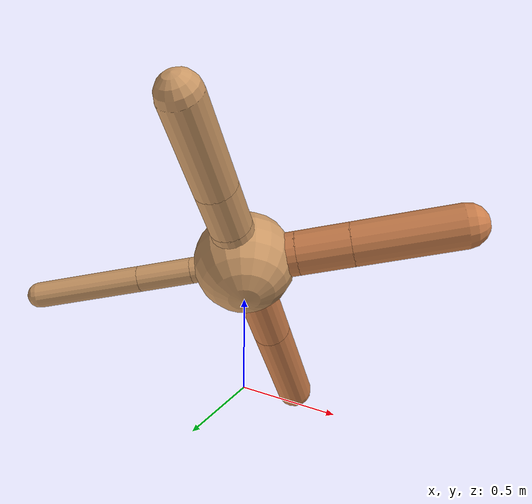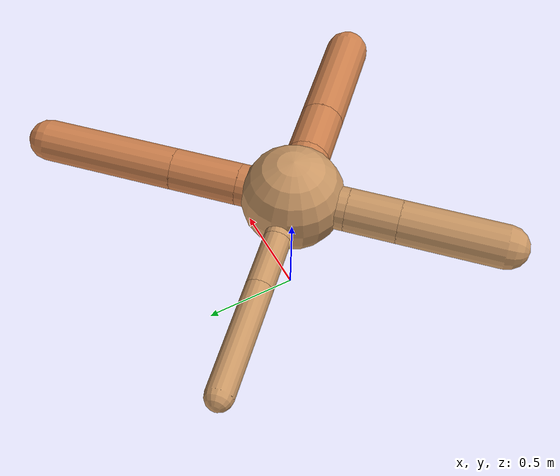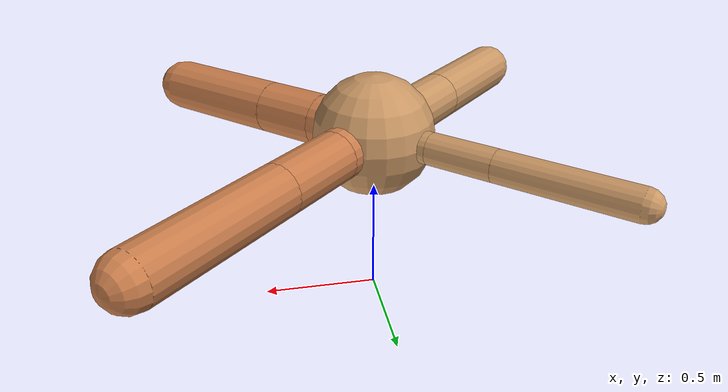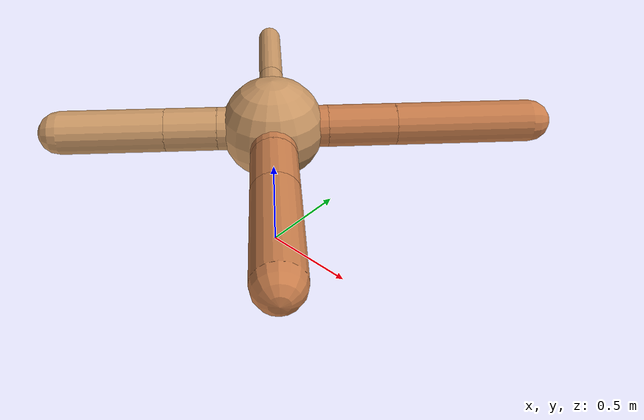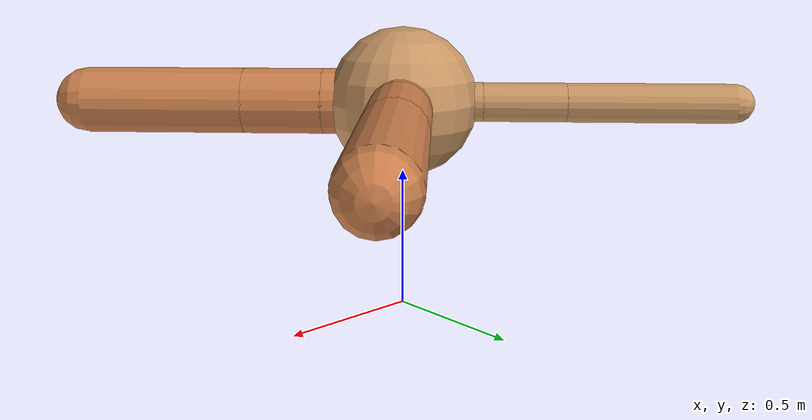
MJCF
<?xml version="1.0" ?>
<mujoco model="ant">

	<compiler angle="degree" coordinate="local" inertiafromgeom="true"/>

	<option integrator="RK4" timestep="0.01"/>

	<custom>

		<numeric data="0.0 0.0 0.55 1.0 0.0 0.0 0.0 0.0 1.0 0.0 -1.0 0.0 -1.0 0.0 1.0" name="init_qpos"/>

	</custom>

	<default>

		<joint armature="1" damping="1" limited="true"/>

		<geom conaffinity="0" condim="3" density="5.0" friction="1.5 0.1 0.1" margin="0.01" rgba="0.8 0.6 0.4 1"/>

	</default>

	<worldbody>

		<body name="torso" pos="0 0 0.75">

			<geom name="torso_geom" pos="0 0 0" size="0.26569231567959667" type="sphere"/>

			<!--joint armature="0" damping="0" limited="false" margin="0.01" name="root" pos="0 0 0" type="free"/-->

			<body name="front_left_leg" pos="0 0 0">

				<geom fromto="0 0 0 0.2 0.2 0" name="aux_1_geom" size="0.10905511408495676" type="capsule" rgba=".8 .5 .3 1"/>

				<body name="aux_1" pos="0.2 0.2 0">

					<joint axis="0 0 1" name="hip_1" pos="0.0 0.0 0.0" range="-40 40" type="hinge"/>

					<geom fromto="0 0 0 0.24894698062186957 0.24894698062186957 0" name="left_leg_geom" size="0.10905511408495676" type="capsule" rgba=".8 .5 .3 1"/>

					<body pos="0.24894698062186957 0.24894698062186957 0" name="front_left_foot">

						<joint axis="-1 1 0" name="ankle_1" pos="0.0 0.0 0.0" range="30 100" type="hinge"/>

						<geom fromto="0 0 0 0.49789396124373914 0.49789396124373914 0" name="left_ankle_geom" size="0.10905511408495676" type="capsule" rgba=".8 .5 .3 1"/>

					</body>

				</body>

			</body>

			<body name="front_right_leg" pos="0 0 0">

				<geom fromto="0 0 0 -0.2 0.2 0" name="aux_2_geom" size="0.06935649560114264" type="capsule"/>

				<body name="aux_2" pos="-0.2 0.2 0">

					<joint axis="0 0 1" name="hip_2" pos="0.0 0.0 0.0" range="-40 40" type="hinge"/>

					<geom fromto="0 0 0 -0.20642539454170974 0.20642539454170974 0" name="right_leg_geom" size="0.06935649560114264" type="capsule"/>

					<body pos="-0.20642539454170974 0.20642539454170974 0" name="front_right_foot">

						<joint axis="1 1 0" name="ankle_2" pos="0.0 0.0 0.0" range="-100 -30" type="hinge"/>

						<geom fromto="0 0 0 -0.4128507890834195 0.4128507890834195 0" name="right_ankle_geom" size="0.06935649560114264" type="capsule"/>

					</body>

				</body>

			</body>

			<body name="left_back_leg" pos="0 0 0">

				<geom fromto="0 0 0 -0.2 -0.2 0" name="aux_3_geom" size="0.11167632282009304" type="capsule"/>

				<body name="aux_3" pos="-0.2 -0.2 0">

					<joint axis="0 0 1" name="hip_3" pos="0.0 0.0 0.0" range="-40 40" type="hinge"/>

					<geom fromto="0 0 0 -0.1879377921977998 -0.1879377921977998 0" name="back_leg_geom" size="0.11167632282009304" type="capsule"/>

					<body pos="-0.1879377921977998 -0.1879377921977998 0" name="left_back_foot">

						<joint axis="-1 1 0" name="ankle_3" pos="0.0 0.0 0.0" range="-100 -30" type="hinge"/>

						<geom fromto="0 0 0 -0.3758755843955996 -0.3758755843955996 0" name="third_ankle_geom" size="0.11167632282009304" type="capsule"/>

					</body>

				</body>

			</body>

			<body name="right_back_leg" pos="0 0 0">

				<geom fromto="0 0 0 0.2 -0.2 0" name="aux_4_geom" size="0.11620492569731049" type="capsule" rgba=".8 .5 .3 1"/>

				<body name="aux_4" pos="0.2 -0.2 0">

					<joint axis="0 0 1" name="hip_4" pos="0.0 0.0 0.0" range="-40 40" type="hinge"/>

					<geom fromto="0 0 0 0.19893729174256855 -0.19893729174256855 0" name="rightback_leg_geom" size="0.11620492569731049" type="capsule" rgba=".8 .5 .3 1"/>

					<body pos="0.19893729174256855 -0.19893729174256855 0" name="right_back_foot">

						<joint axis="1 1 0" name="ankle_4" pos="0.0 0.0 0.0" range="30 100" type="hinge"/>

						<geom fromto="0 0 0 0.3978745834851371 -0.3978745834851371 0" name="fourth_ankle_geom" size="0.11620492569731049" type="capsule" rgba=".8 .5 .3 1"/>

					</body>

				</body>

			</body>

		</body>

	</worldbody>

	<actuator>

		<motor ctrllimited="true" ctrlrange="-1.0 1.0" joint="hip_4" gear="150"/>

		<motor ctrllimited="true" ctrlrange="-1.0 1.0" joint="ankle_4" gear="150"/>

		<motor ctrllimited="true" ctrlrange="-1.0 1.0" joint="hip_1" gear="150"/>

		<motor ctrllimited="true" ctrlrange="-1.0 1.0" joint="ankle_1" gear="150"/>

		<motor ctrllimited="true" ctrlrange="-1.0 1.0" joint="hip_2" gear="150"/>

		<motor ctrllimited="true" ctrlrange="-1.0 1.0" joint="ankle_2" gear="150"/>

		<motor ctrllimited="true" ctrlrange="-1.0 1.0" joint="hip_3" gear="150"/>

		<motor ctrllimited="true" ctrlrange="-1.0 1.0" joint="ankle_3" gear="150"/>

	</actuator>

</mujoco>
